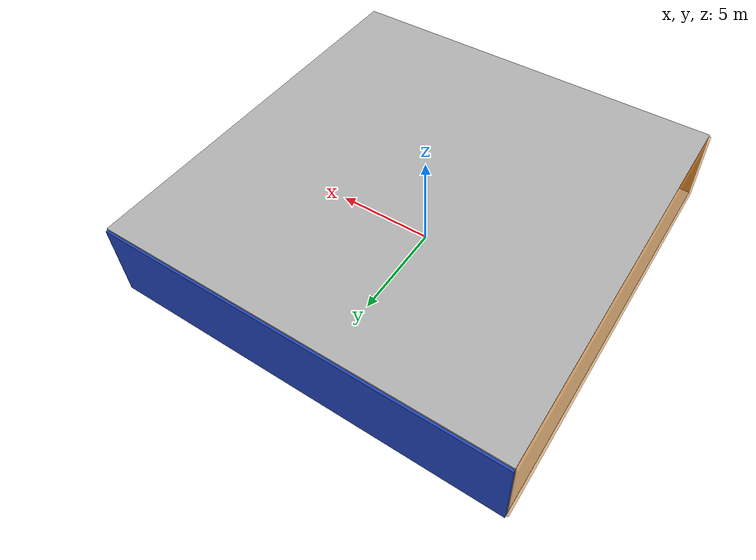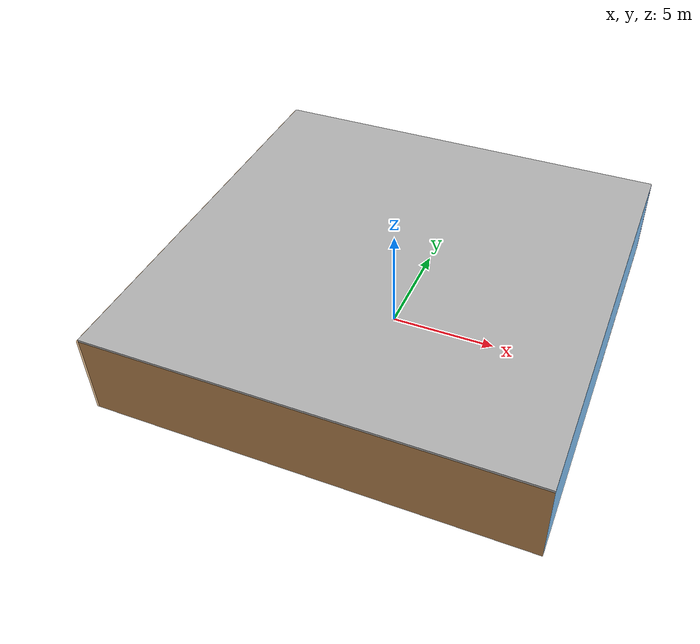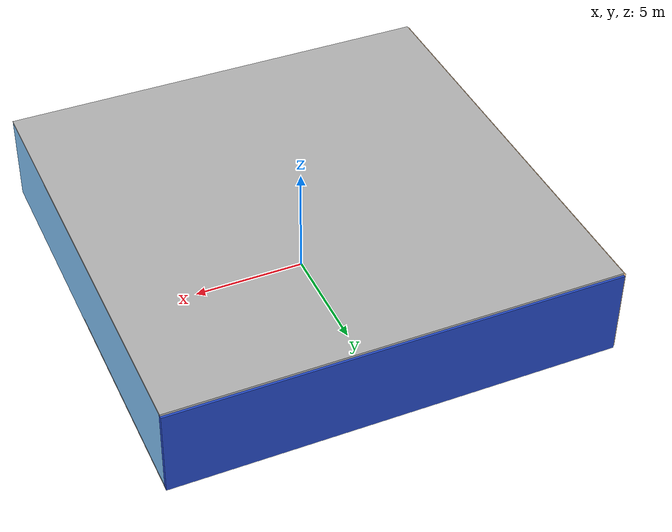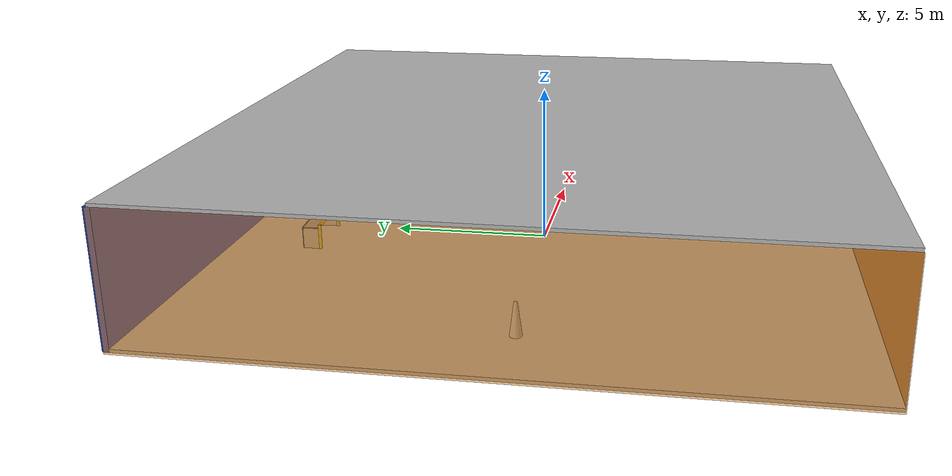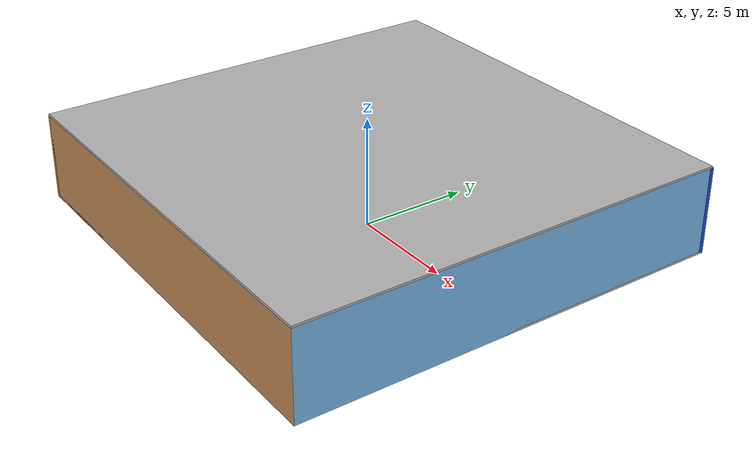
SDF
<sdf version="1.4">
 <world name="default">
  <physics type="ode">
   <max_step_size>0.001</max_step_size>
   <real_time_factor>1</real_time_factor>
   <real_time_update_rate>1000</real_time_update_rate>
   <gravity>0 0 -9.8</gravity>
  </physics>
  <scene><ambient>0.4 0.4 0.4 1</ambient><background>0.7 0.7 0.7 1</background><shadows>1</shadows></scene>
  <model name="Surrounding">
   <static>1</static>
   <link name="Ceiling">
    <collision name="Ceiling_Collision"><geometry><box><size>20 20 0.1</size></box></geometry></collision>
    <visual name="Ceiling_Visual">
     <geometry><box><size>20 20 0.1</size></box></geometry>
     <material>
      <script><uri>file://media/materials/scripts/gazebo.material</uri><name>Gazebo/LightOff</name></script>
     </material>
    </visual>
    <pose>0 0 4.05 0 0 0</pose>
   </link>
   <link name="Wall_South">
    <collision name="Wall_South_Collision">
     <geometry><box><size>20 0 4</size></box></geometry>
     <pose>0 0 2 0 -0 0</pose>
    </collision>
    <visual name="Wall_South_Visual">
     <pose>0 0 2 0 -0 0</pose>
     <geometry><box><size>20 0 4</size></box></geometry>
     <material>
      <script><uri>file://media/materials/scripts/gazebo.material</uri><name>Gazebo/WoodFloor</name></script>
     </material>
    </visual>
    <velocity_decay><linear>0</linear><angular>0</angular></velocity_decay>
    <pose>0 -10 0 0 -0 0</pose>
   </link>
   <link name="Wall_East">
    <collision name="Wall_21_Collision">
     <geometry><box><size>20 0 4</size></box></geometry>
     <pose>0 0 2 0 -0 0</pose>
    </collision>
    <visual name="Wall_21_Visual">
     <pose>0 0 2 0 -0 0</pose>
     <geometry><box><size>20 0 4</size></box></geometry>
     <material>
      <script><uri>file://media/materials/scripts/gazebo.material</uri><name>Gazebo/SkyBlue</name></script>
     </material>
    </visual>
    <velocity_decay><linear>0</linear><angular>0</angular></velocity_decay>
    <pose>10 0 0 0 -0 1.5708</pose>
   </link>
   <link name="Wall_North">
    <collision name="Wall_22_Collision">
     <geometry><box><size>20 0.2 4</size></box></geometry>
     <pose>0 0 2 0 -0 0</pose>
    </collision>
    <visual name="Wall_22_Visual">
     <pose>0 0 2 0 -0 0</pose>
     <geometry><box><size>20 0.2 4</size></box></geometry>
     <material>
      <script><uri>file://media/materials/scripts/gazebo.material</uri><name>Gazebo/BlueLaser</name></script>
     </material>
    </visual>
    <velocity_decay><linear>0</linear><angular>0</angular></velocity_decay>
    <pose>0 10 0 0 -0 0</pose>
   </link>
   <link name="Wall_West">
    <collision name="Wall_23_Collision">
     <geometry><box><size>20 0.2 4</size></box></geometry>
     <pose>0 0 2 0 -0 0</pose>
    </collision>
    <visual name="Wall_23_Visual">
     <pose>0 0 2 0 -0 0</pose>
     <geometry><box><size>20 0.2 4</size></box></geometry>
     <material>
      <script>
       <uri>file://media/materials/scripts/gazebo.material</uri>
       <name>Gazebo/OrangeTransparent</name>
      </script>
     </material>
    </visual>
    <velocity_decay><linear>0</linear><angular>0</angular></velocity_decay>
    <pose>-10 0 0 0 0 -1.5708</pose>
   </link>
   <link name="Ground_link">
    <collision name="collision">
     <pose>0 0 .05 0 -0 0</pose>
     <geometry><box><size>20 20 0.1</size></box></geometry>
    </collision>
    <visual name="visual">
     <pose>0 0 .05 0 -0 0</pose>
     <geometry><box><size>20 20 0.1</size></box></geometry>
     <material>
      <script><uri>file://media/materials/scripts/gazebo.material</uri><name>Gazebo/LightOn</name></script>
     </material>
    </visual>
   </link>
   <static>1</static>
  </model>
  <spherical_coordinates>
   <surface_model>EARTH_WGS84</surface_model>
   <latitude_deg>0</latitude_deg>
   <longitude_deg>0</longitude_deg>
   <elevation>0</elevation>
   <heading_deg>0</heading_deg>
  </spherical_coordinates>
  <light name="lightball_0" type="diffuse">
   <diffuse>0.8 0.8 0.8 1</diffuse>
   <specular>0.2 0.2 0.2 1</specular>
   <attenuation>
    <range>100</range>
    <constant>0.7</constant>
    <linear>0.01</linear>
    <quadratic>0.001</quadratic>
   </attenuation>
   <direction>-0.5 0.1 -0.9</direction>
   <pose>-4.19959565673 -7.20958362521 1.10213259442 0 0 0</pose>
  </light>
  <light name="lightball_1" type="diffuse">
   <diffuse>0.8 0.8 0.8 1</diffuse>
   <specular>0.2 0.2 0.2 1</specular>
   <attenuation>
    <range>100</range>
    <constant>0.7</constant>
    <linear>0.01</linear>
    <quadratic>0.001</quadratic>
   </attenuation>
   <direction>-0.5 0.1 -0.9</direction>
   <pose>-5.9580128594 4.50201313843 2.72752869933 0 0 0</pose>
  </light>
  <light name="lightball_2" type="diffuse">
   <diffuse>0.8 0.8 0.8 1</diffuse>
   <specular>0.2 0.2 0.2 1</specular>
   <attenuation>
    <range>100</range>
    <constant>0.7</constant>
    <linear>0.01</linear>
    <quadratic>0.001</quadratic>
   </attenuation>
   <direction>-0.5 0.1 -0.9</direction>
   <pose>8.80700874409 -8.38053271351 3.2505464694 0 0 0</pose>
  </light>
  <light name="lightball_3" type="diffuse">
   <diffuse>0.8 0.8 0.8 1</diffuse>
   <specular>0.2 0.2 0.2 1</specular>
   <attenuation>
    <range>100</range>
    <constant>0.7</constant>
    <linear>0.01</linear>
    <quadratic>0.001</quadratic>
   </attenuation>
   <direction>-0.5 0.1 -0.9</direction>
   <pose>-5.36331753604 4.22909012572 2.89776060996 0 0 0</pose>
  </light>
  <include>
   <uri>model://construction_cone</uri>
   <pose>-7.63985807534 -0.381181013885 0 0 0 2.22347755984</pose>
  </include>
  <include>
   <uri>model://robocup_3Dsim_goal</uri>
   <pose>-1.33883894128 6.99526082724 0 0 0 1.63637682597</pose>
  </include>
  <include>
   <uri>model://construction_cone</uri>
   <pose>5.28414352764 -6.34074963826 0 0 0 1.95916606001</pose>
  </include>
  <include>
   <uri>model://construction_cone</uri>
   <pose>5.08052726977 0.467234136163 0 0 0 0.844513306645</pose>
  </include>
  <include>
   <uri>model://robocup_3Dsim_goal</uri>
   <pose>7.05605202212 1.69131857529 0 0 0 0.973405643258</pose>
  </include>
  <include><uri>model://table</uri><pose>8.28939952388 3.44245474469 0 0 0 1.40183316221</pose></include>
 </world>
</sdf>

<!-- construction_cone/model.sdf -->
<sdf version="1.5">
  <model name="Construction Cone">
    <link name="link">
      <collision name="collision">
        <geometry>
          <mesh>
            <scale>10 10 10</scale>
            <uri>file://isr-testbed/construction_cone/meshes/construction_cone.dae</uri>
          </mesh>
        </geometry>
      </collision>
      <visual name="visual">
        <geometry>
          <mesh>
            <scale>10 10 10</scale>
            <uri>file://isr-testbed/construction_cone/meshes/construction_cone.dae</uri>
          </mesh>
        </geometry>
      </visual>
    </link>
  </model>
</sdf>

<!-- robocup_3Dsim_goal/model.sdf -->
<sdf version="1.5">
  <model name="robocup_3d_goal">
    <static>true</static>
    <link name="left_post">
      <pose>0 1.05 0.45 0 0 0</pose>
      <collision name="collision">
        <geometry>
          <cylinder>
            <radius>0.05</radius>
            <length>0.9</length>
          </cylinder>
        </geometry>
      </collision>
      <visual name="visual">
        <geometry>
          <cylinder>
            <radius>0.05</radius>
            <length>0.9</length>
          </cylinder>
        </geometry>
        <material>
          <script>
            <uri>file://media/materials/scripts/gazebo.material</uri>
            <name>Gazebo/ZincYellow</name>
          </script>
        </material>
      </visual>
    </link>
    <link name="left_support_horiz_lower">
      <pose>0.30 1.05 0.01 0 0 0</pose>
      <collision name="collision">
        <geometry>
          <box>
            <size>0.50 0.02 0.02</size>
          </box>
        </geometry>
      </collision>
      <visual name="visual">
        <geometry>
          <box>
            <size>0.50 0.02 0.02</size>
          </box>
        </geometry>
        <material>
          <script>
            <uri>file://media/materials/scripts/gazebo.material</uri>
            <name>Gazebo/White</name>
          </script>
        </material>
      </visual>
    </link>
    <link name="left_support_horiz_upper">
      <pose>0.30 1.05 0.79 0 0 0</pose>
      <collision name="collision">
        <geometry>
          <box>
            <size>0.50 0.02 0.02</size>
          </box>
        </geometry>
      </collision>
      <visual name="visual">
        <geometry>
          <box>
            <size>0.50 0.02 0.02</size>
          </box>
        </geometry>
        <material>
          <script>
            <uri>file://media/materials/scripts/gazebo.material</uri>
            <name>Gazebo/White</name>
          </script>
        </material>
      </visual>
    </link>
    <link name="left_support_vertical">
      <pose>0.56 1.05 0.4 0 1.5708 0</pose>
      <collision name="collision">
        <geometry>
          <box>
            <size>0.80 0.02 0.02</size>
          </box>
        </geometry>
      </collision>
      <visual name="visual">
        <geometry>
          <box>
            <size>0.80 0.02 0.02</size>
          </box>
        </geometry>
        <material>
          <script>
            <uri>file://media/materials/scripts/gazebo.material</uri>
            <name>Gazebo/White</name>
          </script>
        </material>
      </visual>
    </link>
    <link name="right_support_horiz_lower">
      <pose>0.30 -1.05 0.01 0 0 0</pose>
      <collision name="collision">
        <geometry>
          <box>
            <size>0.50 0.02 0.02</size>
          </box>
        </geometry>
      </collision>
      <visual name="visual">
        <geometry>
          <box>
            <size>0.50 0.02 0.02</size>
          </box>
        </geometry>
        <material>
          <script>
            <uri>file://media/materials/scripts/gazebo.material</uri>
            <name>Gazebo/White</name>
          </script>
        </material>
      </visual>
    </link>
    <link name="right_support_horiz_upper">
      <pose>0.30 -1.05 0.79 0 0 0</pose>
      <collision name="collision">
        <geometry>
          <box>
            <size>0.50 0.02 0.02</size>
          </box>
        </geometry>
      </collision>
      <visual name="visual">
        <geometry>
          <box>
            <size>0.50 0.02 0.02</size>
          </box>
        </geometry>
        <material>
          <script>
            <uri>file://media/materials/scripts/gazebo.material</uri>
            <name>Gazebo/White</name>
          </script>
        </material>
      </visual>
    </link>
    <link name="right_support_vertical">
      <pose>0.56 -1.05 0.4 0 1.5708 0</pose>
      <collision name="collision">
        <geometry>
          <box>
            <size>0.80 0.02 0.02</size>
          </box>
        </geometry>
      </collision>
      <visual name="visual">
        <geometry>
          <box>
            <size>0.80 0.02 0.02</size>
          </box>
        </geometry>
        <material>
          <script>
            <uri>file://media/materials/scripts/gazebo.material</uri>
            <name>Gazebo/White</name>
          </script>
        </material>
      </visual>
    </link>
    <link name="center_support_horiz_lower">
      <pose>0.56 0 0.01 0 1.5708 0</pose>
      <collision name="collision">
        <geometry>
          <box>
            <size>0.02 2.08 0.02</size>
          </box>
        </geometry>
      </collision>
      <visual name="visual">
        <geometry>
          <box>
            <size>0.02 2.08 0.02</size>
          </box>
        </geometry>
        <material>
          <script>
            <uri>file://media/materials/scripts/gazebo.material</uri>
            <name>Gazebo/White</name>
          </script>
        </material>
      </visual>
    </link>
    <link name="center_support_horiz_upper">
      <pose>0.56 0 0.79 0 1.5708 0</pose>
      <collision name="collision">
        <geometry>
          <box>
            <size>0.02 2.08 0.02</size>
          </box>
        </geometry>
      </collision>
      <visual name="visual">
        <geometry>
          <box>
            <size>0.02 2.08 0.02</size>
          </box>
        </geometry>
        <material>
          <script>
            <uri>file://media/materials/scripts/gazebo.material</uri>
            <name>Gazebo/White</name>
          </script>
        </material>
      </visual>
    </link>
    <link name="right_post">
      <pose>0 -1.05 0.45 0 0 0</pose>
      <collision name="collision">
        <geometry>
          <cylinder>
            <radius>0.05</radius>
            <length>0.9</length>
          </cylinder>
        </geometry>
      </collision>
      <visual name="visual">
        <geometry>
          <cylinder>
            <radius>0.05</radius>
            <length>0.9</length>
          </cylinder>
        </geometry>
        <material>
          <script>
            <uri>file://media/materials/scripts/gazebo.material</uri>
            <name>Gazebo/ZincYellow</name>
          </script>
        </material>
      </visual>
    </link>
    <link name="crossbar">
      <pose>0 0 0.85 1.57 1.57 0</pose>
      <collision name="collision">
        <geometry>
          <cylinder>
            <radius>0.05</radius>
            <length>2.0</length>
          </cylinder>
        </geometry>
      </collision>
      <visual name="visual">
        <geometry>
          <cylinder>
            <radius>0.05</radius>
            <length>2.0</length>
          </cylinder>
        </geometry>
        <material>
          <script>
            <uri>file://media/materials/scripts/gazebo.material</uri>
            <name>Gazebo/ZincYellow</name>
          </script>
        </material>
      </visual>
    </link>
    <link name="center_net">
      <pose>0.56 0 0.40 0 0 0</pose>
      <collision name="collision">
        <geometry>
          <box>
            <size>0.01 2.1 0.80</size>
          </box>
        </geometry>
      </collision>
      <visual name="visual">
        <geometry>
          <box>
            <size>0.01 2.1 0.80</size>
          </box>
        </geometry>
        <material>
          <script>
            <uri>model://../model_source/models/robocup09_spl_field/materials/scripts/</uri>
            <uri>model://../model_source/models/robocup09_spl_field/materials/textures/</uri>
            <name>RoboCup/Net</name>
          </script>
        </material>
      </visual>
    </link>
    <link name="left_net">
      <pose>0.30 1.05 0.40 0 0 0</pose>
      <collision name="collision">
        <geometry>
          <box>
            <size>0.50 0.01 0.76</size>
          </box>
        </geometry>
      </collision>
      <visual name="visual">
        <geometry>
          <box>
            <size>0.50 0.01 0.76</size>
          </box>
        </geometry>
        <material>
          <script>
            <uri>model://../model_source/models/robocup09_spl_field/materials/scripts/</uri>
            <uri>model://../model_source/models/robocup09_spl_field/materials/textures/</uri>
            <name>RoboCup/Net</name>
          </script>
        </material>
      </visual>
    </link>
    <link name="right_net">
      <pose>0.30 -1.05 0.40 0 0 0</pose>
      <collision name="collision">
        <geometry>
          <box>
            <size>0.50 0.01 0.76</size>
          </box>
        </geometry>
      </collision>
      <visual name="visual">
        <geometry>
          <box>
            <size>0.50 0.01 0.76</size>
          </box>
        </geometry>
        <material>
          <script>
            <uri>model://../model_source/models/robocup09_spl_field/materials/scripts/</uri>
            <uri>model://../model_source/models/robocup09_spl_field/materials/textures/</uri>
            <name>RoboCup/Net</name>
          </script>
        </material>
      </visual>
    </link>
  </model>
</sdf>

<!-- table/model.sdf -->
<sdf version="1.5">
  <model name="table">
    <static>true</static>
    <link name="link">
      <collision name="surface">
        <pose>0 0 1.0 0 0 0</pose>
        <geometry>
          <box>
            <size>1.5 0.8 0.03</size>
          </box>
        </geometry>
        <surface>
          <friction>
            <ode>
              <mu>0.6</mu>
              <mu2>0.6</mu2>
            </ode>
          </friction>
        </surface>
      </collision>
      <visual name="visual1">
        <pose>0 0 1.0 0 0 0</pose>
        <geometry>
          <box>
            <size>1.5 0.8 0.03</size>
          </box>
        </geometry>
        <material>
          <script>
            <uri>model://media/materials/scripts/gazebo.material</uri>
            <name>Gazebo/Wood</name>
          </script>
        </material>
      </visual>
      <collision name="front_left_leg">
        <pose>0.68 0.38 0.5 0 0 0</pose>
        <geometry>
          <cylinder>
            <radius>0.02</radius>
            <length>1.0</length>
          </cylinder>
        </geometry>
      </collision>
      <visual name="front_left_leg">
        <pose>0.68 0.38 0.5 0 0 0</pose>
        <geometry>
          <cylinder>
            <radius>0.02</radius>
            <length>1.0</length>
          </cylinder>
        </geometry>
        <material>
          <script>
            <uri>model://media/materials/scripts/gazebo.material</uri>
            <name>Gazebo/Grey</name>
          </script>
        </material>
      </visual>
      <collision name="front_right_leg">
        <pose>0.68 -0.38 0.5 0 0 0</pose>
        <geometry>
          <cylinder>
            <radius>0.02</radius>
            <length>1.0</length>
          </cylinder>
        </geometry>
      </collision>
      <visual name="front_right_leg">
        <pose>0.68 -0.38 0.5 0 0 0</pose>
        <geometry>
          <cylinder>
            <radius>0.02</radius>
            <length>1.0</length>
          </cylinder>
        </geometry>
        <material>
          <script>
            <uri>model://media/materials/scripts/gazebo.material</uri>
            <name>Gazebo/Grey</name>
          </script>
        </material>
      </visual>
      <collision name="back_right_leg">
        <pose>-0.68 -0.38 0.5 0 0 0</pose>
        <geometry>
          <cylinder>
            <radius>0.02</radius>
            <length>1.0</length>
          </cylinder>
        </geometry>
      </collision>
      <visual name="back_right_leg">
        <pose>-0.68 -0.38 0.5 0 0 0</pose>
        <geometry>
          <cylinder>
            <radius>0.02</radius>
            <length>1.0</length>
          </cylinder>
        </geometry>
        <material>
          <script>
            <uri>model://media/materials/scripts/gazebo.material</uri>
            <name>Gazebo/Grey</name>
          </script>
        </material>
      </visual>
      <collision name="back_left_leg">
        <pose>-0.68 0.38 0.5 0 0 0</pose>
        <geometry>
          <cylinder>
            <radius>0.02</radius>
            <length>1.0</length>
          </cylinder>
        </geometry>
      </collision>
      <visual name="back_left_leg">
        <pose>-0.68 0.38 0.5 0 0 0</pose>
        <geometry>
          <cylinder>
            <radius>0.02</radius>
            <length>1.0</length>
          </cylinder>
        </geometry>
        <material>
          <script>
            <uri>model://media/materials/scripts/gazebo.material</uri>
            <name>Gazebo/Grey</name>
          </script>
        </material>
      </visual>
    </link>
  </model>
</sdf>
